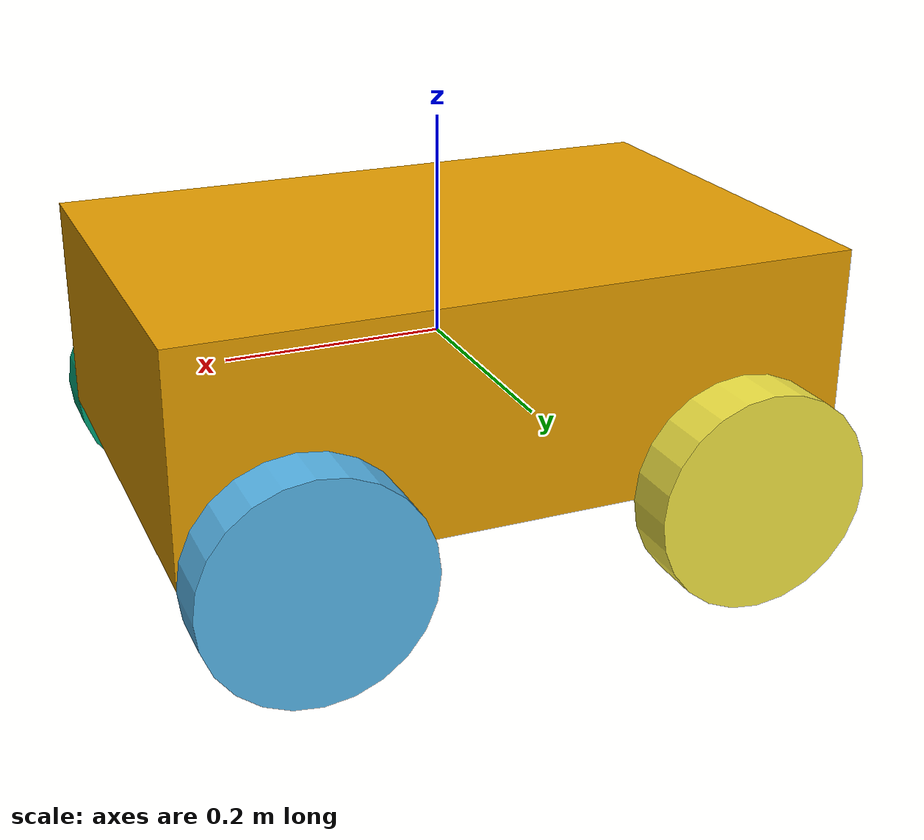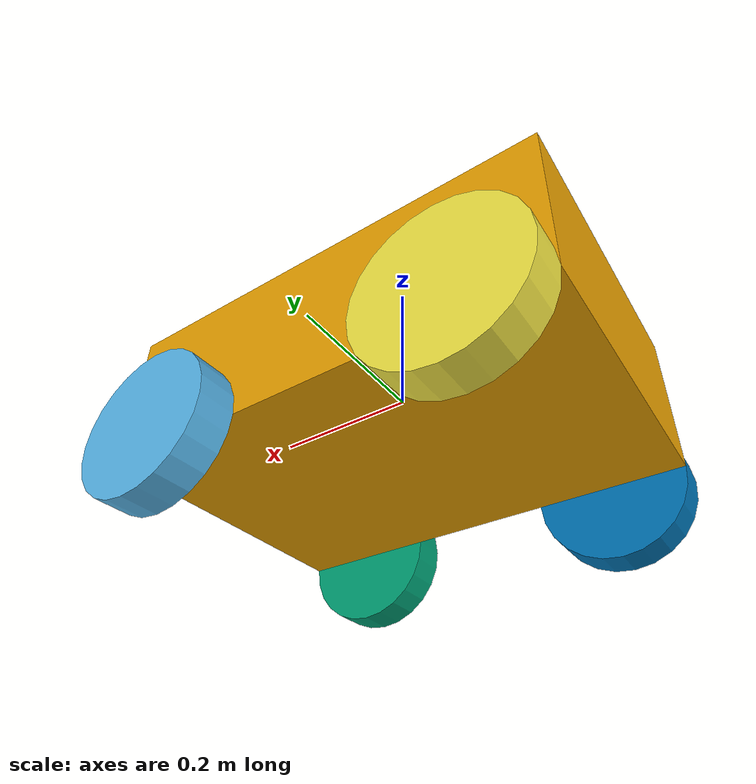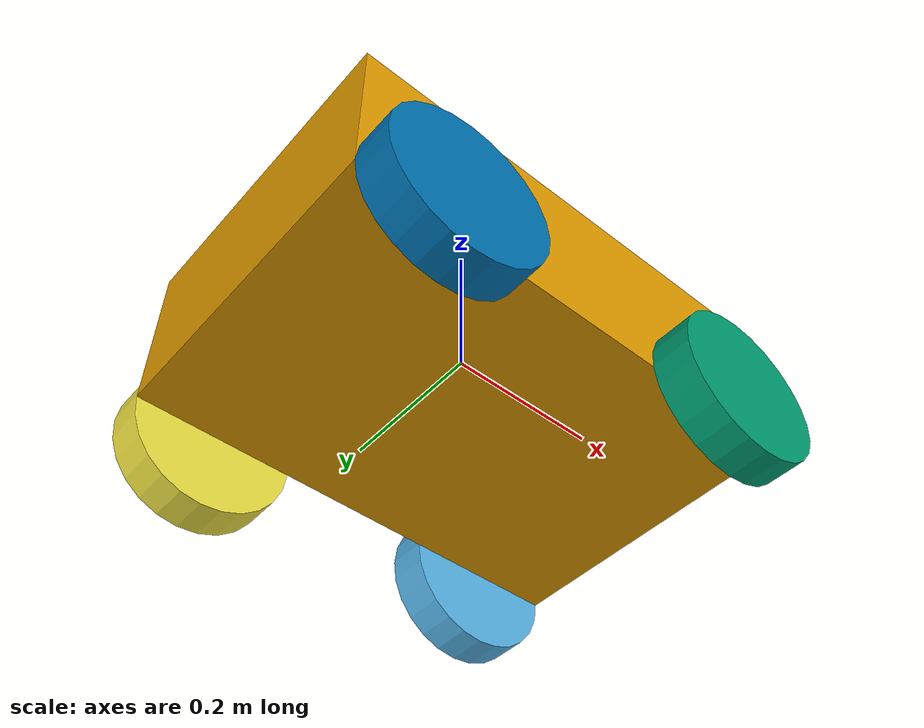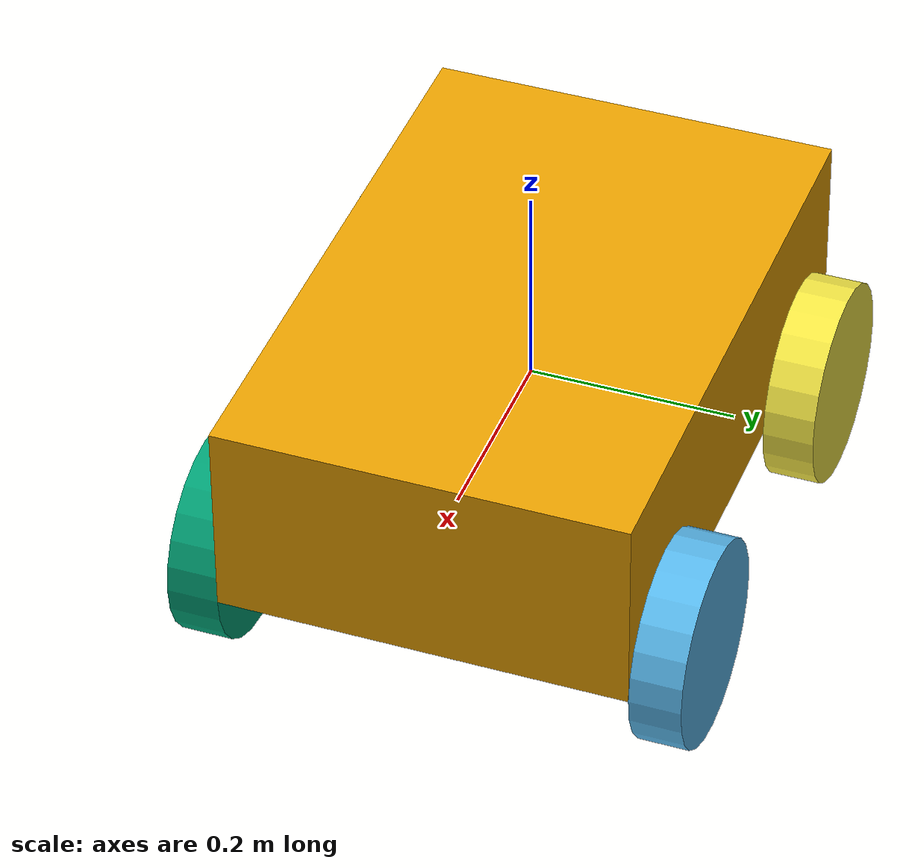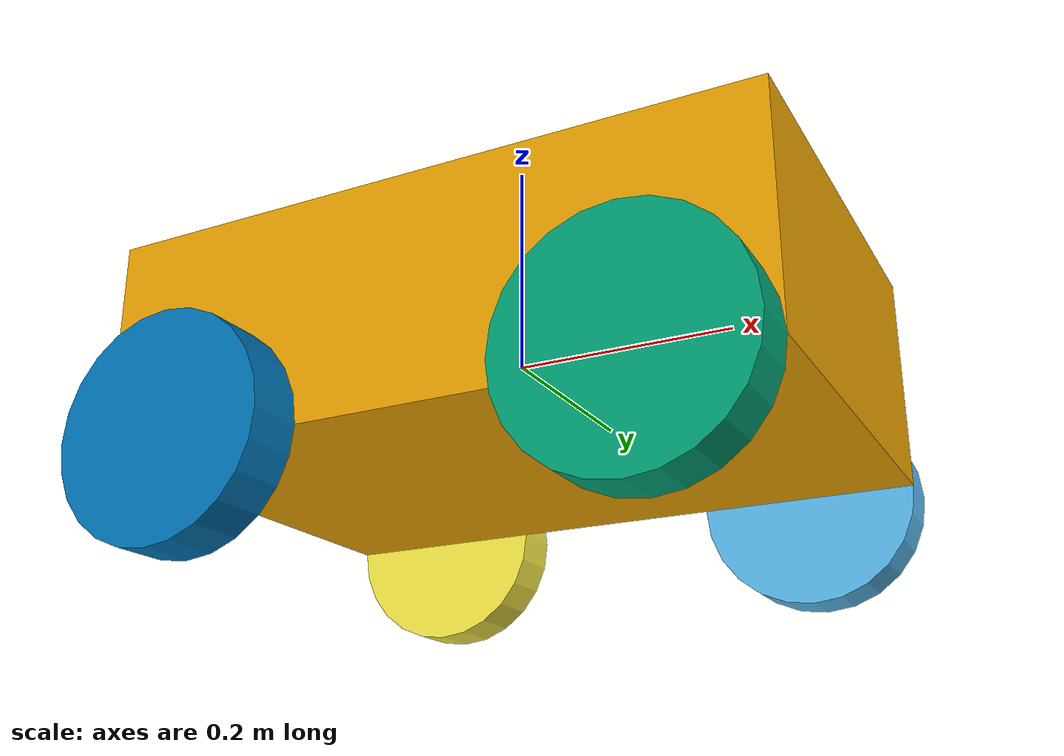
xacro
<?xml version="1.0"?>
<robot xmlns:xacro="http://www.ros.org/wiki/xacro" name="my_robot">

<link name="base_link">
    <visual>
        <geometry>
            <box size="0.6 0.4 0.2"/>
        </geometry>
    </visual>
</link>

<link name="front_left_wheel">
    <visual>
        <geometry>
            <cylinder radius="0.1" length="0.05"/>
        </geometry>
    </visual>
</link>

<link name="front_right_wheel">
    <visual>
        <geometry>
            <cylinder radius="0.1" length="0.05"/>
        </geometry>
    </visual>
</link>

<link name="rear_left_wheel">
    <visual>
        <geometry>
            <cylinder radius="0.1" length="0.05"/>
        </geometry>
    </visual>
</link>

<link name="rear_right_wheel">
    <visual>
        <geometry>
            <cylinder radius="0.1" length="0.05"/>
        </geometry>
    </visual>
</link>

<joint name="front_right_wheel_joint" type="continuous">
    <parent link="base_link"/>
    <child link="front_right_wheel"/>
    <origin xyz="0.2 -0.225 -0.1" rpy="1.5708 0 0"/>
    <axis xyz="0 0 1"/>
</joint>

<joint name="rear_left_wheel_joint" type="continuous">
    <parent link="base_link"/>
    <child link="rear_left_wheel"/>
    <origin xyz="-0.2 0.225 -0.1" rpy="1.5708 0 0"/>
    <axis xyz="0 0 1"/>
</joint>

<joint name="rear_right_wheel_joint" type="continuous">
    <parent link="base_link"/>
    <child link="rear_right_wheel"/>
    <origin xyz="-0.2 -0.225 -0.1" rpy="1.5708 0 0"/>
    <axis xyz="0 0 1"/>
</joint>
<joint name="front_left_wheel_joint" type="continuous">
    <parent link="base_link"/>
    <child link="front_left_wheel"/>
    <origin xyz="0.2 0.225 -0.1" rpy="1.5708 0 0"/>
    <axis xyz="0 0 1"/>
</joint>
</robot>
